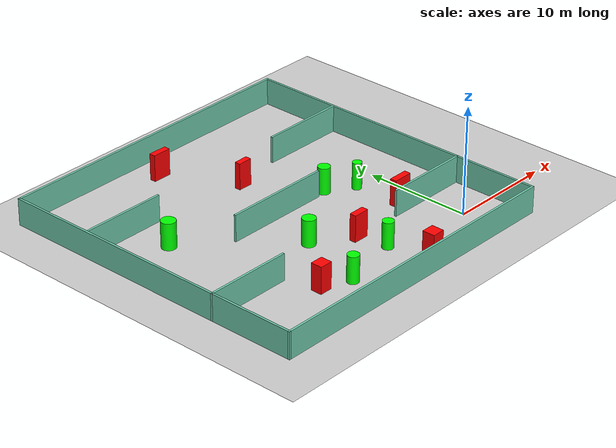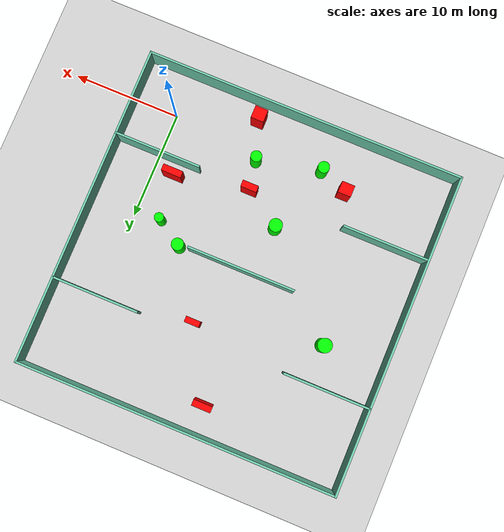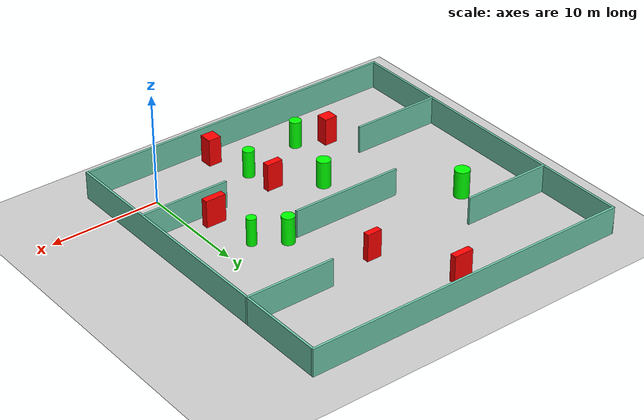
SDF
<sdf version="1.7">
 <world name="default">
  <light name="sun" type="directional">
   <pose>0 0 10 0 -0 0</pose>
   <diffuse>0.8 0.8 0.8 1</diffuse>
   <specular>0.2 0.2 0.2 1</specular>
   <attenuation>
    <range>1000</range>
    <constant>0.9</constant>
    <linear>0.01</linear>
    <quadratic>0.001</quadratic>
   </attenuation>
   <direction>-0.5 0.1 -0.9</direction>
   <spot><inner_angle>0</inner_angle><outer_angle>0</outer_angle><falloff>0</falloff></spot>
  </light>
  <model name="ground_plane">
   <static>1</static>
   <link name="link">
    <collision name="collision">
     <geometry><plane><normal>0 0 1</normal><size>100 100</size></plane></geometry>
     <surface>
      <contact><collide_bitmask>65535</collide_bitmask></contact>
      <friction><ode><mu>100</mu><mu2>50</mu2></ode></friction>
     </surface>
    </collision>
    <visual name="visual">
     <cast_shadows>0</cast_shadows>
     <geometry><plane><normal>0 0 1</normal><size>100 100</size></plane></geometry>
     <material>
      <script><uri>file://media/materials/scripts/gazebo.material</uri><name>Gazebo/Grey</name></script>
     </material>
    </visual>
   </link>
  </model>
  <gravity>0 0 -9.8</gravity>
  <magnetic_field>6e-06 2.3e-05 -4.2e-05</magnetic_field>
  <atmosphere type="adiabatic"/>
  <physics type="ode">
   <max_step_size>0.001</max_step_size>
   <real_time_factor>1</real_time_factor>
   <real_time_update_rate>1000</real_time_update_rate>
  </physics>
  <scene><ambient>0.4 0.4 0.4 1</ambient><background>0.7 0.7 0.7 1</background><shadows>1</shadows></scene>
  <spherical_coordinates>
   <surface_model>EARTH_WGS84</surface_model>
   <latitude_deg>0</latitude_deg>
   <longitude_deg>0</longitude_deg>
   <elevation>0</elevation>
   <heading_deg>0</heading_deg>
  </spherical_coordinates>
  <model name="my_base_walls">
   <link name="Wall_10">
    <collision name="Wall_10_Collision">
     <geometry><box><size>8.2 0.2 2.5</size></box></geometry>
     <pose>0 0 1.25 0 -0 0</pose>
    </collision>
    <visual name="Wall_10_Visual">
     <pose>0 0 1.25 0 -0 0</pose>
     <geometry><box><size>8.2 0.2 2.5</size></box></geometry>
     <material>
      <script><uri>file://media/materials/scripts/gazebo.material</uri><name>Gazebo/Grey</name></script>
      <ambient>0.435294 0.796078 0.67451 1</ambient>
     </material>
     <meta><layer>0</layer></meta>
    </visual>
    <pose>-11 -7 0 0 -0 0</pose>
   </link>
   <link name="Wall_12">
    <collision name="Wall_12_Collision">
     <geometry><box><size>8.2 0.2 2.5</size></box></geometry>
     <pose>0 0 1.25 0 -0 0</pose>
    </collision>
    <visual name="Wall_12_Visual">
     <pose>0 0 1.25 0 -0 0</pose>
     <geometry><box><size>8.2 0.2 2.5</size></box></geometry>
     <material>
      <script><uri>file://media/materials/scripts/gazebo.material</uri><name>Gazebo/Grey</name></script>
      <ambient>0.435294 0.796078 0.67451 1</ambient>
     </material>
     <meta><layer>0</layer></meta>
    </visual>
    <pose>-11 7 0 0 -0 0</pose>
   </link>
   <link name="Wall_14">
    <collision name="Wall_14_Collision">
     <geometry><box><size>8.2 0.2 2.5</size></box></geometry>
     <pose>0 0 1.25 0 -0 0</pose>
    </collision>
    <visual name="Wall_14_Visual">
     <pose>0 0 1.25 0 -0 0</pose>
     <geometry><box><size>8.2 0.2 2.5</size></box></geometry>
     <material>
      <script><uri>file://media/materials/scripts/gazebo.material</uri><name>Gazebo/Grey</name></script>
      <ambient>0.435294 0.796078 0.67451 1</ambient>
     </material>
     <meta><layer>0</layer></meta>
    </visual>
    <pose>11 7 0 0 -0 3.14159</pose>
   </link>
   <link name="Wall_16">
    <collision name="Wall_16_Collision">
     <geometry><box><size>10.2 0.2 2.5</size></box></geometry>
     <pose>0 0 1.25 0 -0 0</pose>
    </collision>
    <visual name="Wall_16_Visual">
     <pose>0 0 1.25 0 -0 0</pose>
     <geometry><box><size>10.2 0.2 2.5</size></box></geometry>
     <material>
      <script><uri>file://media/materials/scripts/gazebo.material</uri><name>Gazebo/Grey</name></script>
      <ambient>0.435294 0.796078 0.67451 1</ambient>
     </material>
     <meta><layer>0</layer></meta>
    </visual>
    <pose>0 0 0 0 -0 3.14159</pose>
   </link>
   <link name="Wall_2">
    <collision name="Wall_2_Collision">
     <geometry><box><size>30.2 0.2 2.5</size></box></geometry>
     <pose>0 0 1.25 0 -0 0</pose>
    </collision>
    <visual name="Wall_2_Visual">
     <pose>0 0 1.25 0 -0 0</pose>
     <geometry><box><size>30.2 0.2 2.5</size></box></geometry>
     <material>
      <script><uri>file://media/materials/scripts/gazebo.material</uri><name>Gazebo/Grey</name></script>
      <ambient>0.435294 0.796078 0.67451 1</ambient>
     </material>
     <meta><layer>0</layer></meta>
    </visual>
    <pose>0 -15 0 0 -0 3.14159</pose>
   </link>
   <link name="Wall_3">
    <collision name="Wall_3_Collision">
     <geometry><box><size>30.2 0.2 2.5</size></box></geometry>
     <pose>0 0 1.25 0 -0 0</pose>
    </collision>
    <visual name="Wall_3_Visual">
     <pose>0 0 1.25 0 -0 0</pose>
     <geometry><box><size>30.2 0.2 2.5</size></box></geometry>
     <material>
      <script><uri>file://media/materials/scripts/gazebo.material</uri><name>Gazebo/Grey</name></script>
      <ambient>0.435294 0.796078 0.67451 1</ambient>
     </material>
     <meta><layer>0</layer></meta>
    </visual>
    <pose>-15 0 0 0 -0 1.5708</pose>
   </link>
   <link name="Wall_4">
    <collision name="Wall_4_Collision">
     <geometry><box><size>30.2 0.2 2.5</size></box></geometry>
     <pose>0 0 1.25 0 -0 0</pose>
    </collision>
    <visual name="Wall_4_Visual">
     <pose>0 0 1.25 0 -0 0</pose>
     <geometry><box><size>30.2 0.2 2.5</size></box></geometry>
     <material>
      <script><uri>file://media/materials/scripts/gazebo.material</uri><name>Gazebo/Grey</name></script>
      <ambient>0.435294 0.796078 0.67451 1</ambient>
     </material>
     <meta><layer>0</layer></meta>
    </visual>
    <pose>0 15 0 0 -0 0</pose>
   </link>
   <link name="Wall_6">
    <collision name="Wall_6_Collision">
     <geometry><box><size>30.2 0.2 2.5</size></box></geometry>
     <pose>0 0 1.25 0 -0 0</pose>
    </collision>
    <visual name="Wall_6_Visual">
     <pose>0 0 1.25 0 -0 0</pose>
     <geometry><box><size>30.2 0.2 2.5</size></box></geometry>
     <material>
      <script><uri>file://media/materials/scripts/gazebo.material</uri><name>Gazebo/Grey</name></script>
      <ambient>0.435294 0.796078 0.67451 1</ambient>
     </material>
     <meta><layer>0</layer></meta>
    </visual>
    <pose>15 0 0 0 -0 1.5708</pose>
   </link>
   <link name="Wall_8">
    <collision name="Wall_8_Collision">
     <geometry><box><size>8.2 0.2 2.5</size></box></geometry>
     <pose>0 0 1.25 0 -0 0</pose>
    </collision>
    <visual name="Wall_8_Visual">
     <pose>0 0 1.25 0 -0 0</pose>
     <geometry><box><size>8.2 0.2 2.5</size></box></geometry>
     <material>
      <script><uri>file://media/materials/scripts/gazebo.material</uri><name>Gazebo/Grey</name></script>
      <ambient>0.435294 0.796078 0.67451 1</ambient>
     </material>
     <meta><layer>0</layer></meta>
    </visual>
    <pose>11 -7 0 0 -0 3.14159</pose>
   </link>
   <static>1</static>
   <pose>-11 11 0 0 -0 0</pose>
  </model>
  <model name="cylinder1">
   <static>1</static>
   <link name="link">
    <inertial>
     <mass>1</mass>
     <inertia><ixx>0.5</ixx><ixy>0</ixy><ixz>0</ixz><iyy>0.5</iyy><iyz>0</iyz><izz>1</izz></inertia>
    </inertial>
    <collision name="collision">
     <geometry><cylinder><radius>0.519383950527246</radius><length>2.5</length></cylinder></geometry>
    </collision>
    <visual name="visual">
     <geometry><cylinder><radius>0.519383950527246</radius><length>2.5</length></cylinder></geometry>
     <material>
      <ambient>0 1 0 1</ambient>
      <diffuse>0 1 0 1</diffuse>
      <specular>0.1 0.1 0.1 1</specular>
      <emissive>0 0 0 0</emissive>
     </material>
    </visual>
   </link>
   <pose>-8.405898365825562 1.1893872237189633 1.25 0 0 0</pose>
  </model>
  <model name="cylinder2">
   <static>1</static>
   <link name="link">
    <inertial>
     <mass>1</mass>
     <inertia><ixx>0.5</ixx><ixy>0</ixy><ixz>0</ixz><iyy>0.5</iyy><iyz>0</iyz><izz>1</izz></inertia>
    </inertial>
    <collision name="collision">
     <geometry><cylinder><radius>0.431775861874146</radius><length>2.5</length></cylinder></geometry>
    </collision>
    <visual name="visual">
     <geometry><cylinder><radius>0.431775861874146</radius><length>2.5</length></cylinder></geometry>
     <material>
      <ambient>0 1 0 1</ambient>
      <diffuse>0 1 0 1</diffuse>
      <specular>0.1 0.1 0.1 1</specular>
      <emissive>0 0 0 0</emissive>
     </material>
    </visual>
   </link>
   <pose>-2.554488568351534 9.558590346997558 1.25 0 0 0</pose>
  </model>
  <model name="cylinder3">
   <static>1</static>
   <link name="link">
    <inertial>
     <mass>1</mass>
     <inertia><ixx>0.5</ixx><ixy>0</ixy><ixz>0</ixz><iyy>0.5</iyy><iyz>0</iyz><izz>1</izz></inertia>
    </inertial>
    <collision name="collision">
     <geometry><cylinder><radius>0.5349784888715258</radius><length>2.5</length></cylinder></geometry>
    </collision>
    <visual name="visual">
     <geometry><cylinder><radius>0.5349784888715258</radius><length>2.5</length></cylinder></geometry>
     <material>
      <ambient>0 1 0 1</ambient>
      <diffuse>0 1 0 1</diffuse>
      <specular>0.1 0.1 0.1 1</specular>
      <emissive>0 0 0 0</emissive>
     </material>
    </visual>
   </link>
   <pose>-14.334145710361767 -0.19642105774808583 1.25 0 0 0</pose>
  </model>
  <model name="cylinder4">
   <static>1</static>
   <link name="link">
    <inertial>
     <mass>1</mass>
     <inertia><ixx>0.5</ixx><ixy>0</ixy><ixz>0</ixz><iyy>0.5</iyy><iyz>0</iyz><izz>1</izz></inertia>
    </inertial>
    <collision name="collision">
     <geometry><cylinder><radius>0.5714055466163743</radius><length>2.5</length></cylinder></geometry>
    </collision>
    <visual name="visual">
     <geometry><cylinder><radius>0.5714055466163743</radius><length>2.5</length></cylinder></geometry>
     <material>
      <ambient>0 1 0 1</ambient>
      <diffuse>0 1 0 1</diffuse>
      <specular>0.1 0.1 0.1 1</specular>
      <emissive>0 0 0 0</emissive>
     </material>
    </visual>
   </link>
   <pose>-4.99547889150222 11.142242031928264 1.25 0 0 0</pose>
  </model>
  <model name="cylinder5">
   <static>1</static>
   <link name="link">
    <inertial>
     <mass>1</mass>
     <inertia><ixx>0.5</ixx><ixy>0</ixy><ixz>0</ixz><iyy>0.5</iyy><iyz>0</iyz><izz>1</izz></inertia>
    </inertial>
    <collision name="collision">
     <geometry><cylinder><radius>0.6669026665616282</radius><length>2.5</length></cylinder></geometry>
    </collision>
    <visual name="visual">
     <geometry><cylinder><radius>0.6669026665616282</radius><length>2.5</length></cylinder></geometry>
     <material>
      <ambient>0 1 0 1</ambient>
      <diffuse>0 1 0 1</diffuse>
      <specular>0.1 0.1 0.1 1</specular>
      <emissive>0 0 0 0</emissive>
     </material>
    </visual>
   </link>
   <pose>-20.33467062812759 14.40045829529193 1.25 0 0 0</pose>
  </model>
  <model name="cylinder6">
   <static>1</static>
   <link name="link">
    <inertial>
     <mass>1</mass>
     <inertia><ixx>0.5</ixx><ixy>0</ixy><ixz>0</ixz><iyy>0.5</iyy><iyz>0</iyz><izz>1</izz></inertia>
    </inertial>
    <collision name="collision">
     <geometry><cylinder><radius>0.6180906250547202</radius><length>2.5</length></cylinder></geometry>
    </collision>
    <visual name="visual">
     <geometry><cylinder><radius>0.6180906250547202</radius><length>2.5</length></cylinder></geometry>
     <material>
      <ambient>0 1 0 1</ambient>
      <diffuse>0 1 0 1</diffuse>
      <specular>0.1 0.1 0.1 1</specular>
      <emissive>0 0 0 0</emissive>
     </material>
    </visual>
   </link>
   <pose>-12.362747242039704 6.2594423323125525 1.25 0 0 0</pose>
  </model>
  <model name="box1">
   <static>1</static>
   <link name="link">
    <inertial>
     <mass>1</mass>
     <inertia><ixx>0.083</ixx><ixy>0</ixy><ixz>0</ixz><iyy>0.083</iyy><iyz>0</iyz><izz>0.083</izz></inertia>
    </inertial>
    <collision name="collision">
     <geometry><box><size>1.363496922499745 0.5527390753553822 2.5</size></box></geometry>
    </collision>
    <visual name="visual">
     <geometry><box><size>1.363496922499745 0.5527390753553822 2.5</size></box></geometry>
     <material>
      <ambient>1 0 0 1</ambient>
      <diffuse>1 0 0 1</diffuse>
      <specular>0.1 0.1 0.1 1</specular>
      <emissive>0 0 0 0</emissive>
     </material>
    </visual>
    <sensor name="my_contact" type="contact">
     <contact><collision>box_collision</collision><topic>__default_topic__</topic></contact>
    </sensor>
   </link>
   <pose>-8.860496618221077 16.92155568904332 1.25 0 0 0</pose>
  </model>
  <model name="box2">
   <static>1</static>
   <link name="link">
    <inertial>
     <mass>1</mass>
     <inertia><ixx>0.083</ixx><ixy>0</ixy><ixz>0</ixz><iyy>0.083</iyy><iyz>0</iyz><izz>0.083</izz></inertia>
    </inertial>
    <collision name="collision">
     <geometry><box><size>1.7824233529707252 0.5729720198074733 2.5</size></box></geometry>
    </collision>
    <visual name="visual">
     <geometry><box><size>1.7824233529707252 0.5729720198074733 2.5</size></box></geometry>
     <material>
      <ambient>1 0 0 1</ambient>
      <diffuse>1 0 0 1</diffuse>
      <specular>0.1 0.1 0.1 1</specular>
      <emissive>0 0 0 0</emissive>
     </material>
    </visual>
    <sensor name="my_contact" type="contact">
     <contact><collision>box_collision</collision><topic>__default_topic__</topic></contact>
    </sensor>
   </link>
   <pose>-12.460123935292673 23.31200079594581 1.25 0 0 0</pose>
  </model>
  <model name="box3">
   <static>1</static>
   <link name="link">
    <inertial>
     <mass>1</mass>
     <inertia><ixx>0.083</ixx><ixy>0</ixy><ixz>0</ixz><iyy>0.083</iyy><iyz>0</iyz><izz>0.083</izz></inertia>
    </inertial>
    <collision name="collision">
     <geometry><box><size>1.2019231376299013 1.1782570993127792 2.5</size></box></geometry>
    </collision>
    <visual name="visual">
     <geometry><box><size>1.2019231376299013 1.1782570993127792 2.5</size></box></geometry>
     <material>
      <ambient>1 0 0 1</ambient>
      <diffuse>1 0 0 1</diffuse>
      <specular>0.1 0.1 0.1 1</specular>
      <emissive>0 0 0 0</emissive>
     </material>
    </visual>
    <sensor name="my_contact" type="contact">
     <contact><collision>box_collision</collision><topic>__default_topic__</topic></contact>
    </sensor>
   </link>
   <pose>-7.199604521644176 -2.492038710677405 1.25 0 0 0</pose>
  </model>
  <model name="box4">
   <static>1</static>
   <link name="link">
    <inertial>
     <mass>1</mass>
     <inertia><ixx>0.083</ixx><ixy>0</ixy><ixz>0</ixz><iyy>0.083</iyy><iyz>0</iyz><izz>0.083</izz></inertia>
    </inertial>
    <collision name="collision">
     <geometry><box><size>1.20325999183223 1.0730692403055992 2.5</size></box></geometry>
    </collision>
    <visual name="visual">
     <geometry><box><size>1.20325999183223 1.0730692403055992 2.5</size></box></geometry>
     <material>
      <ambient>1 0 0 1</ambient>
      <diffuse>1 0 0 1</diffuse>
      <specular>0.1 0.1 0.1 1</specular>
      <emissive>0 0 0 0</emissive>
     </material>
    </visual>
    <sensor name="my_contact" type="contact">
     <contact><collision>box_collision</collision><topic>__default_topic__</topic></contact>
    </sensor>
   </link>
   <pose>-16.939388630936936 0.8612403289010313 1.25 0 0 0</pose>
  </model>
  <model name="box5">
   <static>1</static>
   <link name="link">
    <inertial>
     <mass>1</mass>
     <inertia><ixx>0.083</ixx><ixy>0</ixy><ixz>0</ixz><iyy>0.083</iyy><iyz>0</iyz><izz>0.083</izz></inertia>
    </inertial>
    <collision name="collision">
     <geometry><box><size>1.5063521860856397 0.6164659953359399 2.5</size></box></geometry>
    </collision>
    <visual name="visual">
     <geometry><box><size>1.5063521860856397 0.6164659953359399 2.5</size></box></geometry>
     <material>
      <ambient>1 0 0 1</ambient>
      <diffuse>1 0 0 1</diffuse>
      <specular>0.1 0.1 0.1 1</specular>
      <emissive>0 0 0 0</emissive>
     </material>
    </visual>
    <sensor name="my_contact" type="contact">
     <contact><collision>box_collision</collision><topic>__default_topic__</topic></contact>
    </sensor>
   </link>
   <pose>-8.890232580516182 3.91448784419235 1.25 0 0 0</pose>
  </model>
  <model name="box6">
   <static>1</static>
   <link name="link">
    <inertial>
     <mass>1</mass>
     <inertia><ixx>0.083</ixx><ixy>0</ixy><ixz>0</ixz><iyy>0.083</iyy><iyz>0</iyz><izz>0.083</izz></inertia>
    </inertial>
    <collision name="collision">
     <geometry><box><size>1.877055237468166 0.611126048209894 2.5</size></box></geometry>
    </collision>
    <visual name="visual">
     <geometry><box><size>1.877055237468166 0.611126048209894 2.5</size></box></geometry>
     <material>
      <ambient>1 0 0 1</ambient>
      <diffuse>1 0 0 1</diffuse>
      <specular>0.1 0.1 0.1 1</specular>
      <emissive>0 0 0 0</emissive>
     </material>
    </visual>
    <sensor name="my_contact" type="contact">
     <contact><collision>box_collision</collision><topic>__default_topic__</topic></contact>
    </sensor>
   </link>
   <pose>-1.9873445055114054 5.272088627850577 1.25 0 0 0</pose>
  </model>
 </world>
</sdf>
